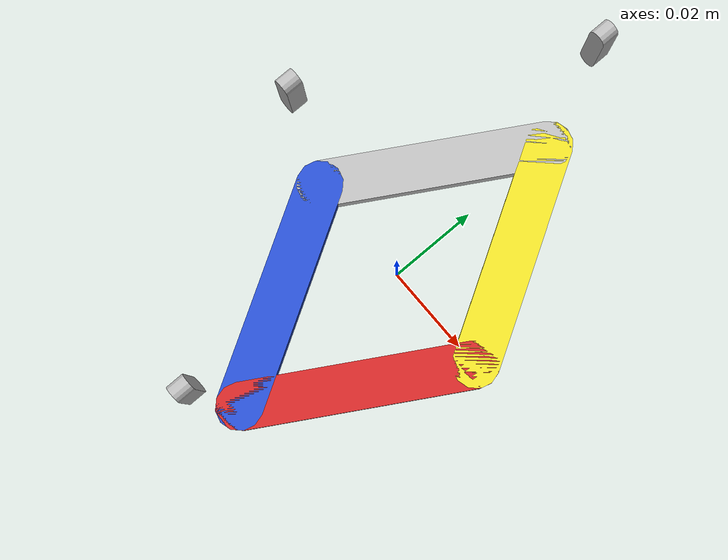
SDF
<?xml version='1.0'?>
<sdf version='1.6'>
  <model name='four_bar_arms_ver1'>

    <link name="body_link1">
        <gravity>0</gravity>
        <visual name="link1">
            <geometry>
                <mesh>
                    <uri>model://four_bar_arms_ver1/meshes/collision/body_link1.dae</uri>
                    <scale>1 1 1</scale>
                </mesh>
            </geometry>
             <material>
                <script>
                    <uri>file://media/materials/scripts/gazebo.material</uri>
                    <name>Gazebo/Yellow</name>
                </script>
            </material>
        </visual>
        <collision name='collision'>
            <geometry>
                <mesh>
                    <uri>model://four_bar_arms_ver1/meshes/collision/body_link1.dae</uri>
                    <scale>1 1 1</scale>
                </mesh>
            </geometry>
      </collision>
    </link>

    <joint name="body12" type="revolute">
        <pose>0.025 0 0 0 0 0</pose>
        <parent>body_link1</parent>
        <child>body_link2</child>
        <limit effort="100" lower="0.0" upper="0.52359879" velocity="3.14159274"/>
        <axis>
            <xyz>0 0 1</xyz>

        </axis>
    </joint>

    <link name="body_link2">
        <gravity>0</gravity>
        <visual name="link2">
            <geometry>
                <mesh>
                    <uri>model://four_bar_arms_ver1/meshes/collision/body_link2.dae</uri>
                    <scale>1 1 1</scale>
                </mesh>
            </geometry>
             <material>
                <script>
                    <uri>file://media/materials/scripts/gazebo.material</uri>
                    <name>Gazebo/Red</name>
                </script>
            </material>
        </visual>
        <collision name='collision'>
            <geometry>
                <mesh>
                    <uri>model://four_bar_arms_ver1/meshes/collision/body_link2.dae</uri>
                    <scale>1 1 1</scale>
                </mesh>
            </geometry>
      </collision>
    </link>

    <joint name="body23" type="revolute">
        <pose>0 -0.0425 0 0 0 0</pose>
        <parent>body_link2</parent>
        <child>body_link3</child>
        <axis>
            <xyz>0 0 1</xyz>

        </axis>
    </joint>

    <link name="body_link3">
        <gravity>0</gravity>
        <visual name="link3">
            <geometry>
                <mesh>
                    <uri>model://four_bar_arms_ver1/meshes/collision/body_link3.dae</uri>
                    <scale>1 1 1</scale>
                </mesh>
            </geometry>
             <material>
                <script>
                    <uri>file://media/materials/scripts/gazebo.material</uri>
                    <name>Gazebo/Blue</name>
                </script>
            </material>
        </visual>
        <collision name='collision'>
            <geometry>
                <mesh>
                    <uri>model://four_bar_arms_ver1/meshes/collision/body_link3.dae</uri>
                    <scale>1 1 1</scale>
                </mesh>
            </geometry>
        <surface>
            <friction>
                <ode>
                    <mu>0</mu>
                    <mu2>0</mu2>
                    <slip1>1.0</slip1>
                    <slip2>1.0</slip2>
                </ode>
            </friction>
        </surface>
      </collision>
    </link>

    <joint name="body34" type="revolute">
        <pose>-0.025 0 0 0 0 0</pose>
        <parent>body_link3</parent>
        <child>body_link4</child>
        <axis>
            <xyz>0 0 1</xyz>

        </axis>
    </joint>

    <link name="body_link4">
        <gravity>0</gravity>
        <visual name="link4">
            <geometry>
                <mesh>
                    <uri>model://four_bar_arms_ver1/meshes/collision/body_link4.dae</uri>
                    <scale>1 1 1</scale>
                </mesh>
            </geometry>
        </visual>
        <collision name='collision'>
            <geometry>
                <mesh>
                    <uri>model://four_bar_arms_ver1/meshes/collision/body_link4.dae</uri>
                    <scale>1 1 1</scale>
                </mesh>
            </geometry>
      </collision>
    </link>

	<joint name="body41" type="revolute">
        <pose>0 0.0425 0 0 0 0</pose>
        <parent>body_link4</parent>
        <child>body_link1</child>
        <limit effort="100" lower="-0.52359879" upper="0" velocity="3.14159274"/>
        <axis>
            <xyz>0 0 1</xyz>
        </axis>
    </joint>

    <link name="hand_link1">
        <gravity>0</gravity>
        <visual name="link2">
            <geometry>
                <mesh>
                    <uri>model://four_bar_arms_ver1/meshes/collision/hand_link1.dae</uri>
                    <scale>1 1 1</scale>
                </mesh>
            </geometry>
        </visual>
        <collision name='collision'>
            <geometry>
                <mesh>
                    <uri>model://four_bar_arms_ver1/meshes/collision/hand_link1.dae</uri>
                    <scale>1 1 1</scale>
                </mesh>
            </geometry>
      </collision>
    </link>
ß

    <link name="hand_link2">
        <gravity>0</gravity>
        <visual name="link2">
            <geometry>
                <mesh>
                    <uri>model://four_bar_arms_ver1/meshes/collision/hand_link2.dae</uri>
                    <scale>1 1 1</scale>
                </mesh>
            </geometry>
        </visual>
        <collision name='collision'>
            <geometry>
                <mesh>
                    <uri>model://four_bar_arms_ver1/meshes/collision/hand_link2.dae</uri>
                    <scale>1 1 1</scale>
                </mesh>
            </geometry>
      </collision>
    </link>

    <link name="hand_link3">
        <gravity>0</gravity>
        <visual name="link2">
            <geometry>
                <mesh>
                    <uri>model://four_bar_arms_ver1/meshes/collision/hand_link3.dae</uri>
                    <scale>1 1 1</scale>
                </mesh>
            </geometry>
        </visual>
        <collision name='collision'>
            <geometry>
                <mesh>
                    <uri>model://four_bar_arms_ver1/meshes/collision/hand_link3.dae</uri>
                    <scale>1 1 1</scale>
                </mesh>
            </geometry>
      </collision>
    </link>

  </model>
</sdf>
